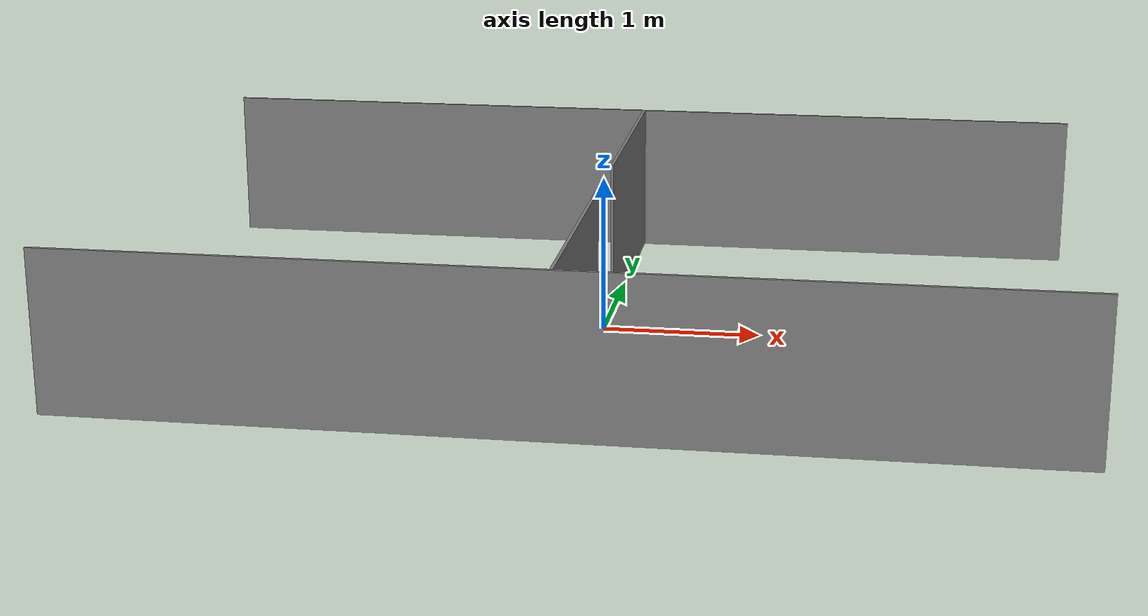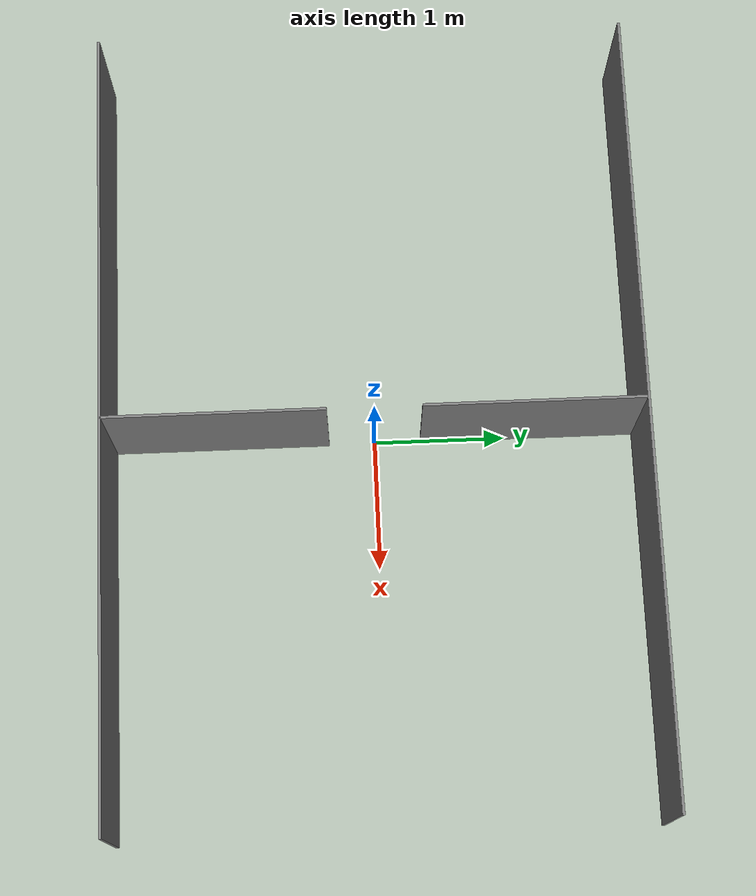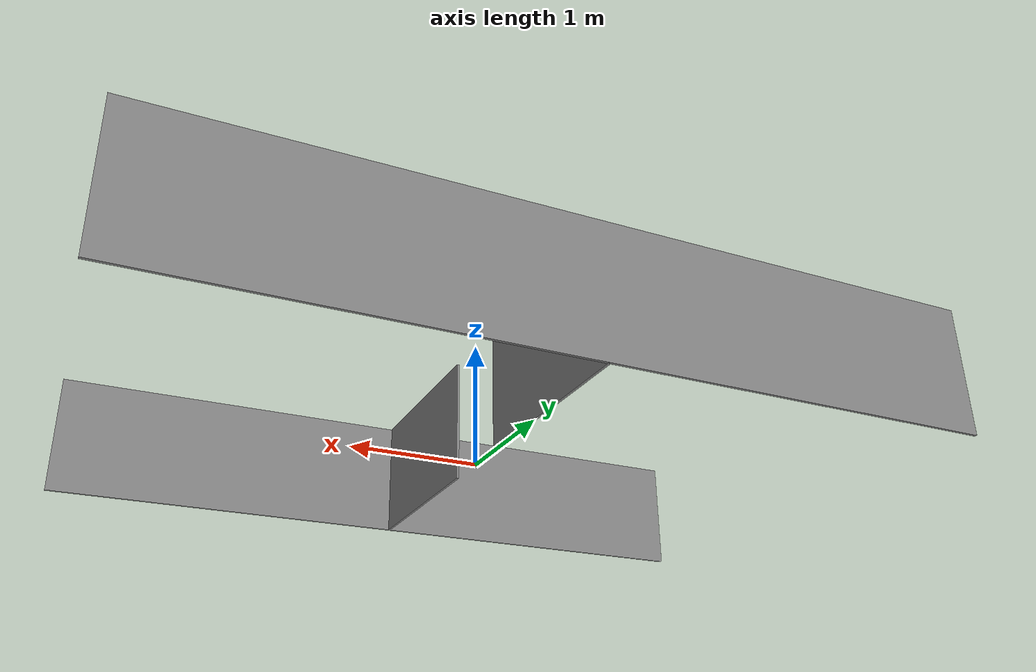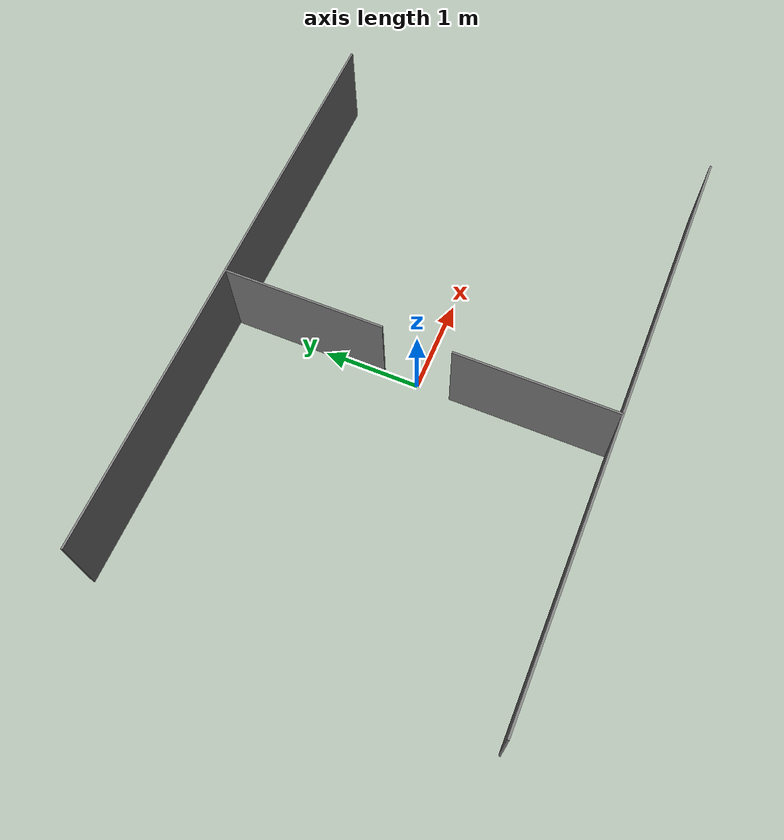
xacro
<?xml version="1.0"?>
<robot
    xmlns:xacro="http://www.ros.org/wiki/xacro" name="opening" >

  <xacro:arg name="opening_height" default="1.0" />
  <xacro:arg name="opening_width" default="0.7" />
  <xacro:arg name="env_width" default="4.0" />
  <xacro:arg name="env_length" default="6.0" />
  <xacro:property name="frame_mass" value="10" />

  <material name="gray">
    <color rgba="0.5 0.5 0.5 1"/>
  </material>

  <xacro:macro name="frame_model" params="name mass length width x y height thickness direction color:=gray">
    <link name="${name}">
      <visual>
        <origin xyz="${x} ${y} ${height}" rpy="0 0 ${direction}"/>
        <geometry>
          <box size="${length} ${width} ${thickness}" />
        </geometry>
        <material name="${color}"/>
      </visual>
      <collision>
        <origin xyz="${x} ${y} ${height}" rpy="0 0 ${direction}"/>
        <geometry>
          <box size="${length} ${width} ${thickness}" />
        </geometry>
      </collision>
      <inertial>
        <origin xyz="${x} ${y} ${height}" rpy="0 0 ${direction}"/>
        <mass value="${mass}"/>
        <inertia
            ixx="${0.25 * mass * width * thickness}" ixy="0.0" ixz="0.0"
            iyy="${0.25 * mass * width * thickness}" iyz="0.0"
            izz="${0.5 * mass * width * thickness}"/>
      </inertial>
    </link>
  </xacro:macro>

  <xacro:frame_model name="main_frame1" mass="${frame_mass}" length="$(arg env_length)" width="0.02" x="0" y="${0.5 * $(arg env_width)}" height="${0.5 * $(arg opening_height)}" thickness="$(arg opening_height)" direction="0" />
  <xacro:frame_model name="main_frame2" mass="${frame_mass}" length="$(arg env_length)" width="0.02" x="0" y="${-0.5 * $(arg env_width)}"  height="${0.5 * $(arg opening_height)}" thickness="$(arg opening_height)" direction="0" />
  <xacro:frame_model name="main_frame3" mass="${frame_mass}" length="0.02" width="${$(arg env_width) * 0.5 - $(arg opening_width) * 0.5}" x="0" y="${$(arg env_width) * 0.25 + $(arg opening_width) * 0.25}"  height="${0.5 * $(arg opening_height)}" thickness="$(arg opening_height)" direction="0"  />
  <xacro:frame_model name="main_frame4" mass="${frame_mass}" length="0.02" width="${$(arg env_width) * 0.5 - $(arg opening_width) * 0.5}" x="0" y="${$(arg env_width) * -0.25 + $(arg opening_width) * -0.25}"  height="${0.5 * $(arg opening_height)}" thickness="$(arg opening_height)" direction="0"  />

  <link name="root"/> dummy root link for KDL

  <joint name="fixed_root_joint" type="fixed">
    <parent link="root"/>
    <child link="main_frame1"/>
    <origin xyz="0 0 0" rpy="0 0 0"/>
  </joint>
  <joint name="frame_joint1" type="fixed">
    <parent link="main_frame1"/>
    <child link="main_frame2"/>
    <origin xyz="0 0 0" rpy="0 0 0"/>
    <axis xyz="0 0 1"/>
  </joint>
  <joint name="frame_joint2" type="fixed">
    <parent link="main_frame1"/>
    <child link="main_frame3"/>
    <origin xyz="0 0 0" rpy="0 0 0"/>
    <axis xyz="0 0 1"/>
  </joint>
  <joint name="frame_joint3" type="fixed">
    <parent link="main_frame1"/>
    <child link="main_frame4"/>
    <origin xyz="0 0 0" rpy="0 0 0"/>
    <axis xyz="0 0 1"/>
  </joint>

  <!-- TODO: change friction rate to paramter -->
  <!-- Noet: 0.13 corresponds to 3.5N -->
  <gazebo reference="main_frame1">
    <material>Gazebo/Black</material>
    <mu1>0.13</mu1>
    <mu2>0.13</mu2>
  </gazebo>

  <gazebo reference="main_frame2">
    <material>Gazebo/Black</material>
    <mu1>0.13</mu1>
    <mu2>0.13</mu2>
  </gazebo>

  <gazebo reference="main_frame3">
    <material>Gazebo/Black</material>
    <mu1>0.13</mu1>
    <mu2>0.13</mu2>
  </gazebo>

  <gazebo reference="main_frame4">
    <material>Gazebo/Black</material>
    <mu1>0.13</mu1>
    <mu2>0.13</mu2>
  </gazebo>

  <gazebo>
    <static>true</static>
  </gazebo>

</robot>
